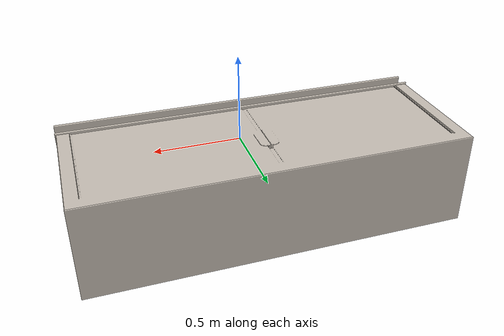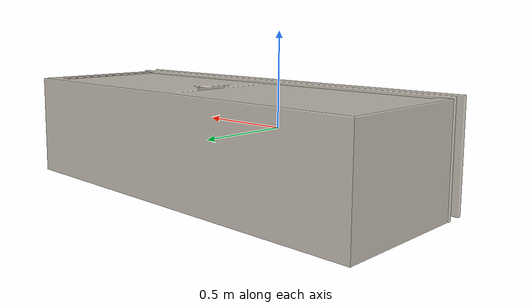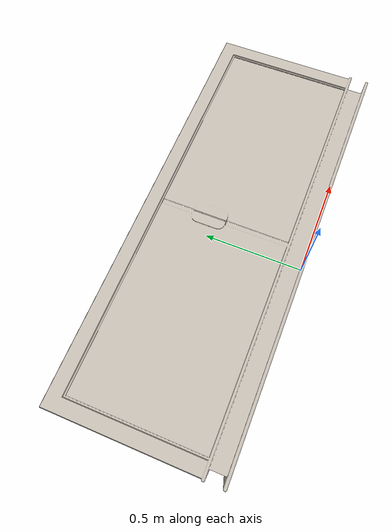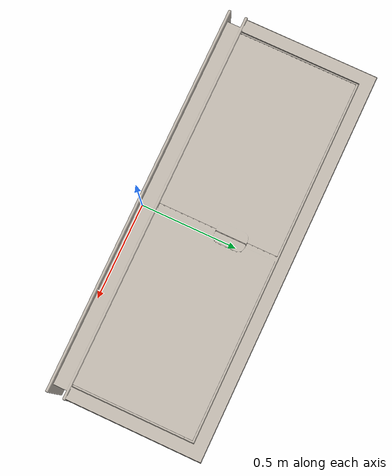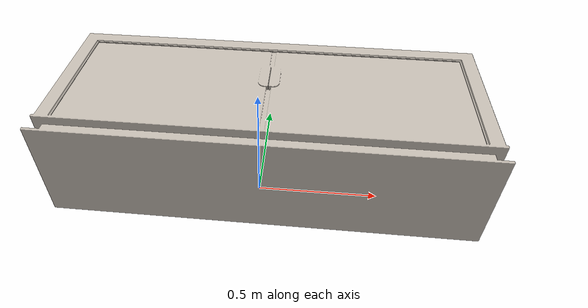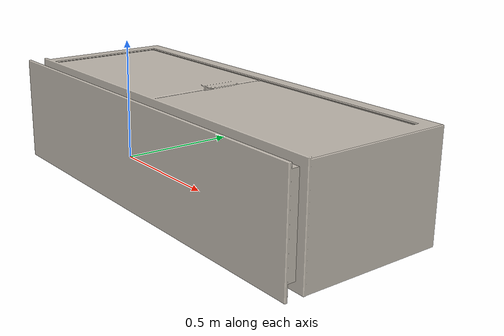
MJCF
<mujoco model="normalized_model">
  <default>
    <default class="visual">
      <geom group="2" type="mesh" contype="0" conaffinity="0"/>
    </default>
    <default class="collision">
      <geom group="3" type="mesh"/>
    </default>
  </default>
  <asset>
    <texture type="2d" name="texture" file="texture.png"/>
    <material name="solid_001_wire" texture="texture" specular="0.3333333333333333" shininess="0.5"/>
    <mesh file="normalized_model.obj"/>
  </asset>
  <worldbody>
    <body name="normalized_model">
      <freejoint/>
      <geom material="solid_001_wire" mesh="normalized_model" class="visual"/>
      <geom mesh="normalized_model" class="collision"/>
    </body>
  </worldbody>
</mujoco>
